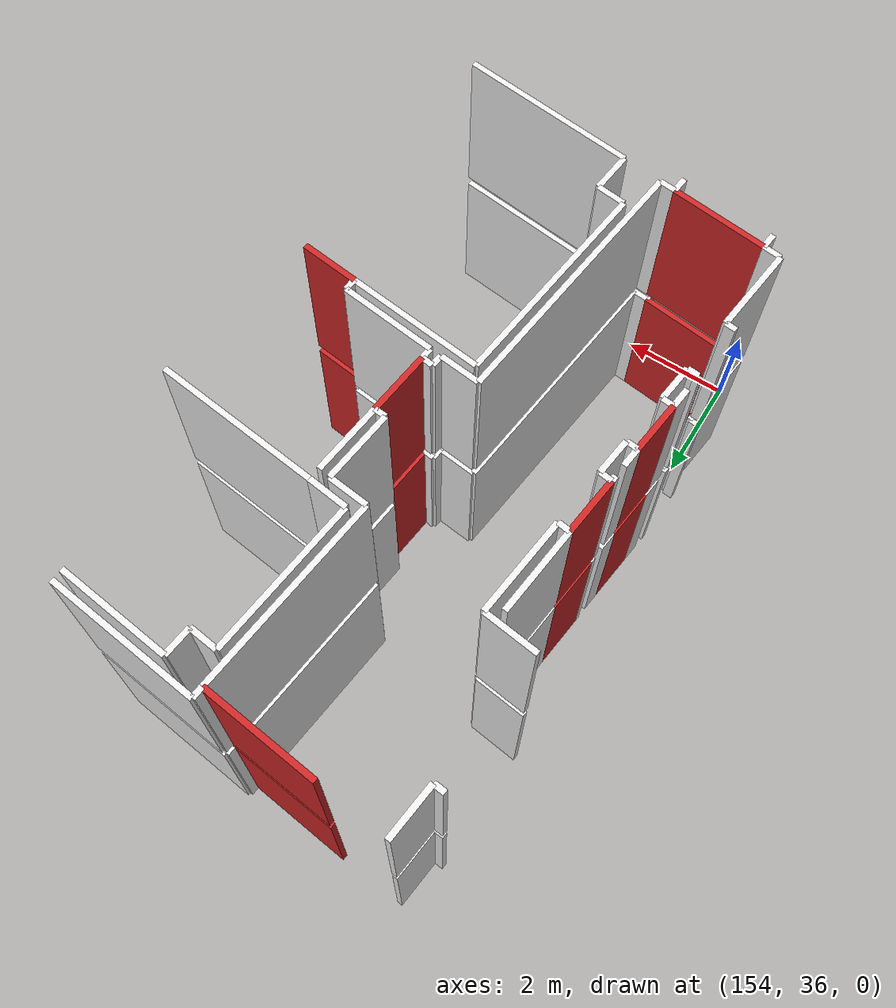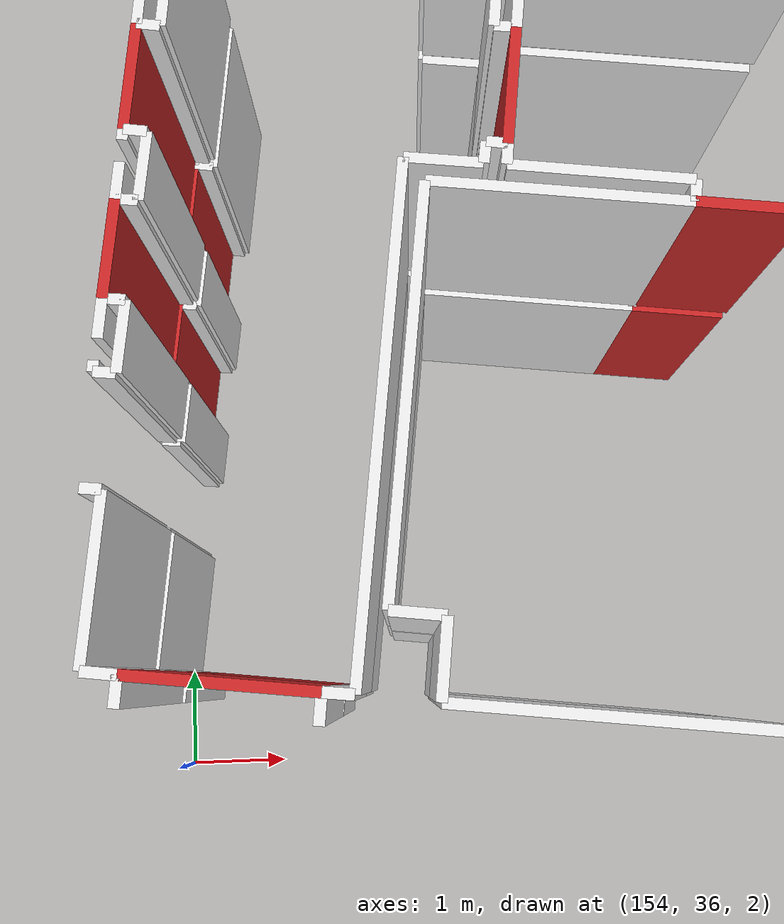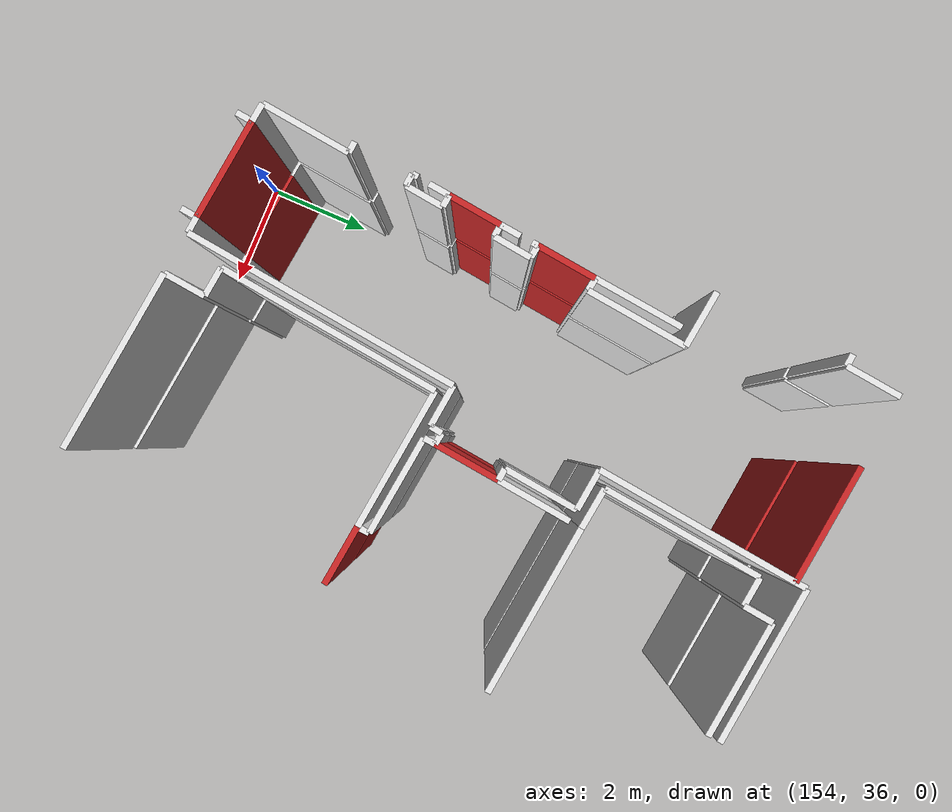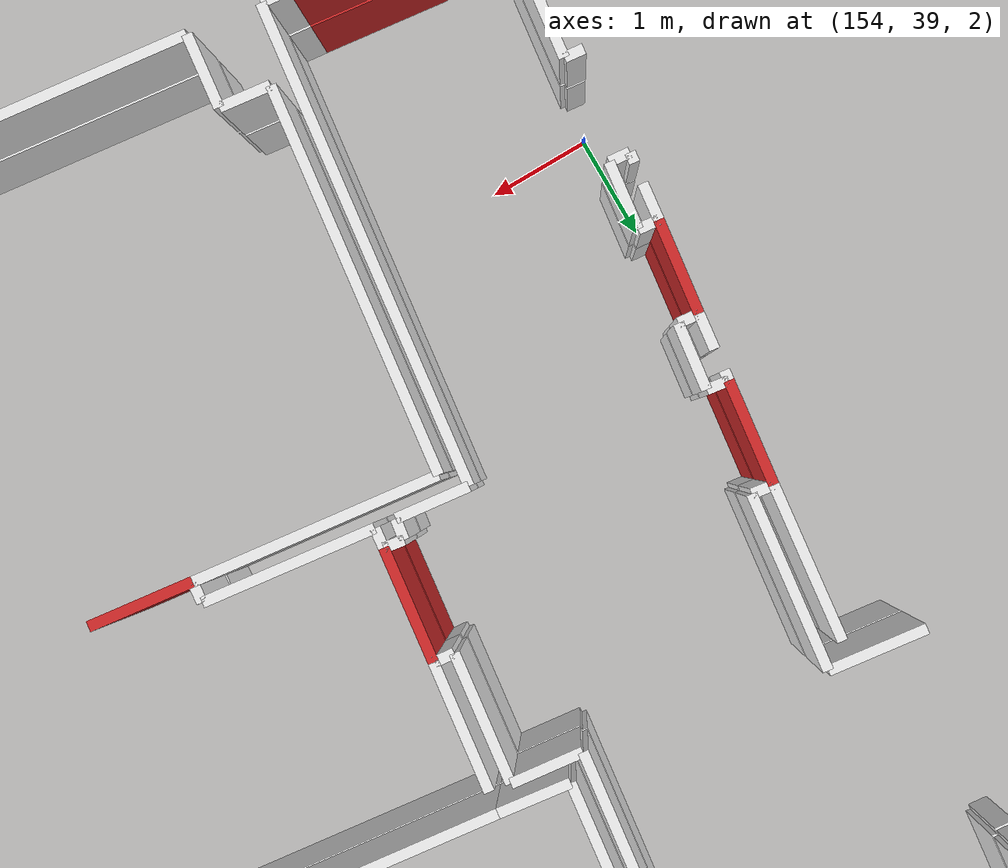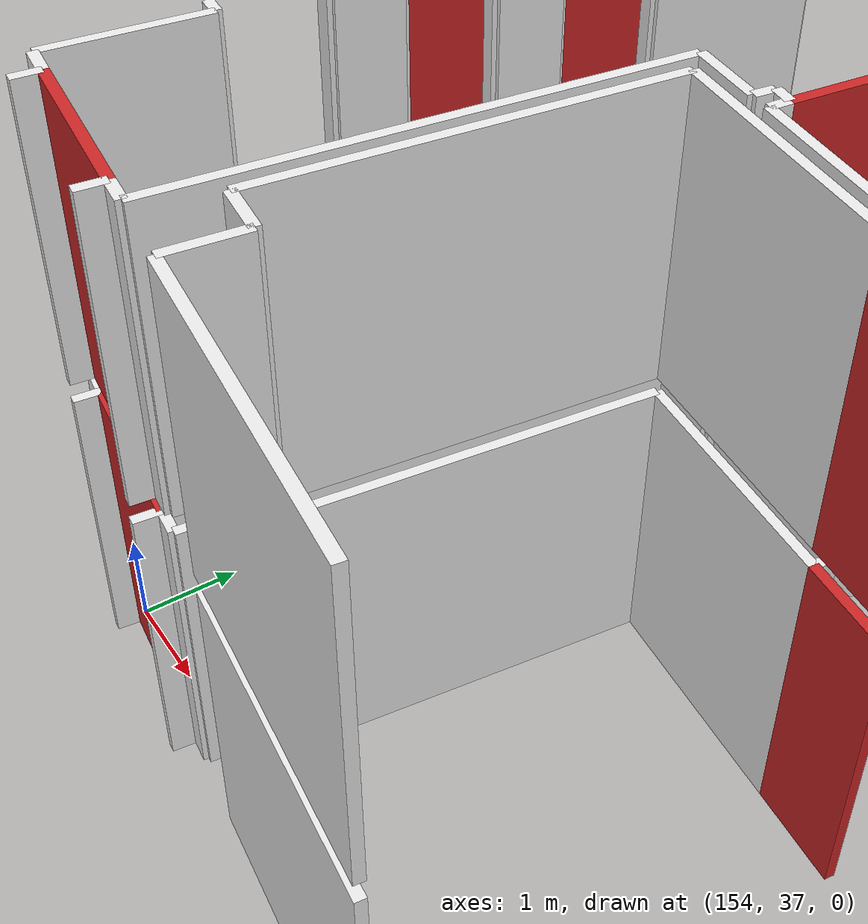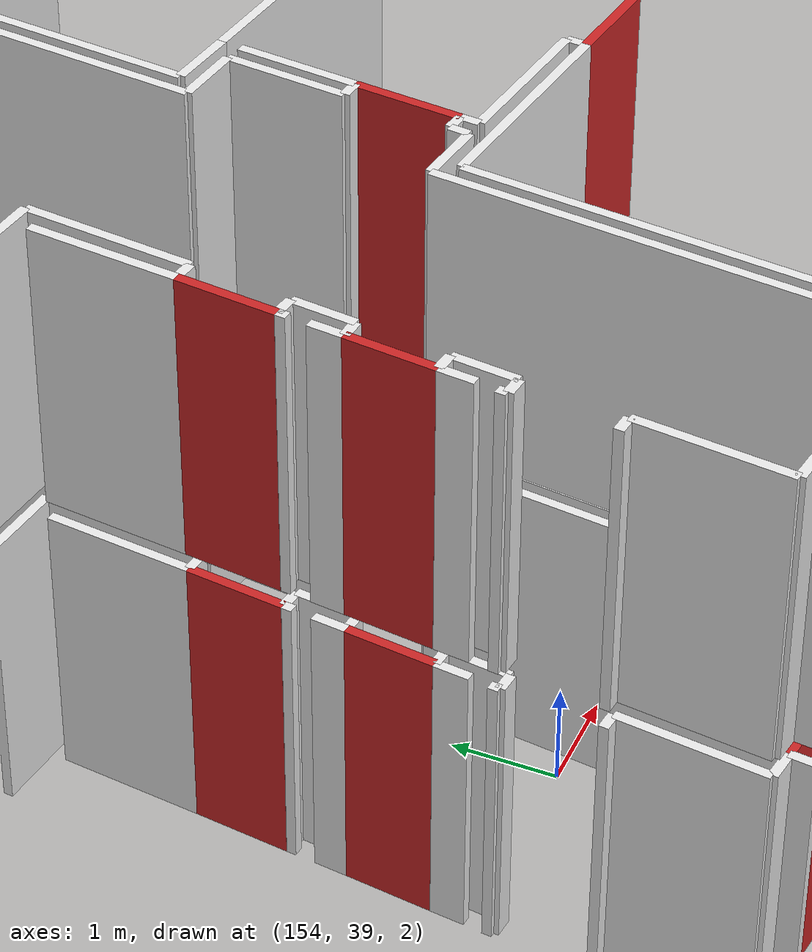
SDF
<sdf version="1.6">
 <world name="default">
  <model name="wall_154.0_40.6_0.0">
   <static>true</static>
   <pose>153.9649999999965 40.574999999953434 1.5 0 0 -1.693768196390317</pose>
   <link name="link">
    <visual name="visual">
     <geometry><box><size>0.8967719889926413 0.1 3</size></box></geometry>
     <material>
      <script><uri>file://media/materials/scripts/gazebo.material</uri><name>Gazebo/Red</name></script>
     </material>
    </visual>
   </link>
  </model>
  <model name="wall_156.3_47.3_0.0">
   <static>true</static>
   <pose>156.25500000000466 47.32000000006519 1.5 0 0 -0.12002333835124222</pose>
   <link name="link">
    <visual name="visual">
     <geometry><box><size>2.004420115606183 0.1 3</size></box></geometry>
     <material>
      <script><uri>file://media/materials/scripts/gazebo.material</uri><name>Gazebo/Red</name></script>
     </material>
    </visual>
   </link>
  </model>
  <model name="wall_154.2_42.2_0.0">
   <static>true</static>
   <pose>154.15000000002328 42.15500000002794 1.5 0 0 -1.6914199953995817</pose>
   <link name="link">
    <visual name="visual">
     <geometry><box><size>0.997246208074735 0.1 3</size></box></geometry>
     <material>
      <script><uri>file://media/materials/scripts/gazebo.material</uri><name>Gazebo/Red</name></script>
     </material>
    </visual>
   </link>
  </model>
  <model name="wall_157.5_41.9_0.0">
   <static>true</static>
   <pose>157.51500000001397 41.94500000006519 1.5 0 0 -1.6895016639081246</pose>
   <link name="link">
    <visual name="visual">
     <geometry><box><size>1.0977249203199801 0.1 3</size></box></geometry>
     <material>
      <script><uri>file://media/materials/scripts/gazebo.material</uri><name>Gazebo/Red</name></script>
     </material>
    </visual>
   </link>
  </model>
  <model name="wall_154.9_36.9_0.0">
   <static>true</static>
   <pose>154.86999999999534 36.85000000009313 1.5 0 0 -0.11990398547329398</pose>
   <link name="link">
    <visual name="visual">
     <geometry><box><size>1.6720047847367918 0.1 3</size></box></geometry>
     <material>
      <script><uri>file://media/materials/scripts/gazebo.material</uri><name>Gazebo/Red</name></script>
     </material>
    </visual>
   </link>
  </model>
  <model name="wall_159.5_40.8_0.0">
   <static>true</static>
   <pose>159.5449999999837 40.75 1.5 0 0 -0.1206236686924795</pose>
   <link name="link">
    <visual name="visual">
     <geometry><box><size>0.9972462083198822 0.1 3</size></box></geometry>
     <material>
      <script><uri>file://media/materials/scripts/gazebo.material</uri><name>Gazebo/Red</name></script>
     </material>
    </visual>
   </link>
  </model>
  <model name="wall_153.8_39.5_0.0">
   <static>true</static>
   <pose>153.83500000002095 39.54000000003725 1.5 0 0 1.4711276738426837</pose>
   <link name="link">
    <visual name="visual">
     <geometry><box><size>0.10049875584145537 0.1 3</size></box></geometry>
     <material>
      <script><uri>file://media/materials/scripts/gazebo.material</uri><name>Gazebo/White</name></script>
     </material>
    </visual>
   </link>
  </model>
  <model name="wall_154.0_41.2_0.0">
   <static>true</static>
   <pose>154.04000000000815 41.18999999994412 1.5 0 0 1.4536875822379653</pose>
   <link name="link">
    <visual name="visual">
     <geometry><box><size>0.34234485522203445 0.1 3</size></box></geometry>
     <material>
      <script><uri>file://media/materials/scripts/gazebo.material</uri><name>Gazebo/White</name></script>
     </material>
    </visual>
   </link>
  </model>
  <model name="wall_153.9_40.0_0.0">
   <static>true</static>
   <pose>153.88999999998487 39.954999999841675 1.5 0 0 1.4570043197403058</pose>
   <link name="link">
    <visual name="visual">
     <geometry><box><size>0.35227829916632136 0.1 3</size></box></geometry>
     <material>
      <script><uri>file://media/materials/scripts/gazebo.material</uri><name>Gazebo/White</name></script>
     </material>
    </visual>
   </link>
  </model>
  <model name="wall_158.6_47.2_0.0">
   <static>true</static>
   <pose>158.5899999999965 47.23999999999069 1.5 0 0 3.020968985070269</pose>
   <link name="link">
    <visual name="visual">
     <geometry><box><size>2.659323222111057 0.1 3</size></box></geometry>
     <material>
      <script><uri>file://media/materials/scripts/gazebo.material</uri><name>Gazebo/White</name></script>
     </material>
    </visual>
   </link>
  </model>
  <model name="wall_157.3_47.3_0.0">
   <static>true</static>
   <pose>157.2600000000093 47.300000000046566 1.5 0 0 -1.670464979516584</pose>
   <link name="link">
    <visual name="visual">
     <geometry><box><size>0.20099751214626105 0.1 3</size></box></geometry>
     <material>
      <script><uri>file://media/materials/scripts/gazebo.material</uri><name>Gazebo/White</name></script>
     </material>
    </visual>
   </link>
  </model>
  <model name="wall_159.2_43.8_0.0">
   <static>true</static>
   <pose>159.1700000000128 43.75 1.5 0 0 3.0216044435658165</pose>
   <link name="link">
    <visual name="visual">
     <geometry><box><size>2.840422503772646 0.1 3</size></box></geometry>
     <material>
      <script><uri>file://media/materials/scripts/gazebo.material</uri><name>Gazebo/White</name></script>
     </material>
    </visual>
   </link>
  </model>
  <model name="wall_157.4_44.0_0.0">
   <static>true</static>
   <pose>157.41500000000815 43.96499999985099 1.5 0 0 3.01189011664666</pose>
   <link name="link">
    <visual name="visual">
     <geometry><box><size>0.6958448102676278 0.1 3</size></box></geometry>
     <material>
      <script><uri>file://media/materials/scripts/gazebo.material</uri><name>Gazebo/White</name></script>
     </material>
    </visual>
   </link>
  </model>
  <model name="wall_157.2_45.3_0.0">
   <static>true</static>
   <pose>157.23000000001048 45.34499999997206 1.5 0 0 1.4515150894624935</pose>
   <link name="link">
    <visual name="visual">
     <geometry><box><size>2.6891076590745193 0.1 3</size></box></geometry>
     <material>
      <script><uri>file://media/materials/scripts/gazebo.material</uri><name>Gazebo/White</name></script>
     </material>
    </visual>
   </link>
  </model>
  <model name="wall_157.6_46.7_0.0">
   <static>true</static>
   <pose>157.6350000000093 46.6500000001397 1.5 0 0 -0.12184243713456504</pose>
   <link name="link">
    <visual name="visual">
     <geometry><box><size>0.4936598018854468 0.1 3</size></box></geometry>
     <material>
      <script><uri>file://media/materials/scripts/gazebo.material</uri><name>Gazebo/White</name></script>
     </material>
    </visual>
   </link>
  </model>
  <model name="wall_157.9_46.9_0.0">
   <static>true</static>
   <pose>157.9100000000035 46.87000000011176 1.5 0 0 1.4513674007811488</pose>
   <link name="link">
    <visual name="visual">
     <geometry><box><size>0.5035871324802894 0.1 3</size></box></geometry>
     <material>
      <script><uri>file://media/materials/scripts/gazebo.material</uri><name>Gazebo/White</name></script>
     </material>
    </visual>
   </link>
  </model>
  <model name="wall_158.9_47.0_0.0">
   <static>true</static>
   <pose>158.91500000000815 47.0 1.5 0 0 -0.12246105752953153</pose>
   <link name="link">
    <visual name="visual">
     <geometry><box><size>1.964713719642811 0.1 3</size></box></geometry>
     <material>
      <script><uri>file://media/materials/scripts/gazebo.material</uri><name>Gazebo/White</name></script>
     </material>
    </visual>
   </link>
  </model>
  <model name="wall_153.8_38.5_0.0">
   <static>true</static>
   <pose>153.81499999997322 38.48999999999069 1.5 0 0 3.0367157147638757</pose>
   <link name="link">
    <visual name="visual">
     <geometry><box><size>0.19104973174969345 0.1 3</size></box></geometry>
     <material>
      <script><uri>file://media/materials/scripts/gazebo.material</uri><name>Gazebo/White</name></script>
     </material>
    </visual>
   </link>
  </model>
  <model name="wall_153.9_39.5_0.0">
   <static>true</static>
   <pose>153.93000000002212 39.480000000214204 1.5 0 0 -0.09966865257760905</pose>
   <link name="link">
    <visual name="visual">
     <geometry><box><size>0.20099751243585498 0.1 3</size></box></geometry>
     <material>
      <script><uri>file://media/materials/scripts/gazebo.material</uri><name>Gazebo/White</name></script>
     </material>
    </visual>
   </link>
  </model>
  <model name="wall_154.1_39.8_0.0">
   <static>true</static>
   <pose>154.07000000000698 39.79000000003725 1.5 0 0 1.446441332248135</pose>
   <link name="link">
    <visual name="visual">
     <geometry><box><size>0.6449806195259987 0.1 3</size></box></geometry>
     <material>
      <script><uri>file://media/materials/scripts/gazebo.material</uri><name>Gazebo/White</name></script>
     </material>
    </visual>
   </link>
  </model>
  <model name="wall_154.0_40.1_0.0">
   <static>true</static>
   <pose>154.0099999999802 40.11999999987893 1.5 0 0 3.0419240010121844</pose>
   <link name="link">
    <visual name="visual">
     <geometry><box><size>0.20099751243585498 0.1 3</size></box></geometry>
     <material>
      <script><uri>file://media/materials/scripts/gazebo.material</uri><name>Gazebo/White</name></script>
     </material>
    </visual>
   </link>
  </model>
  <model name="wall_154.1_41.0_0.0">
   <static>true</static>
   <pose>154.11999999999534 41.01000000000931 1.5 0 0 -0.09966865260642473</pose>
   <link name="link">
    <visual name="visual">
     <geometry><box><size>0.20099751237793617 0.1 3</size></box></geometry>
     <material>
      <script><uri>file://media/materials/scripts/gazebo.material</uri><name>Gazebo/White</name></script>
     </material>
    </visual>
   </link>
  </model>
  <model name="wall_154.3_41.3_0.0">
   <static>true</static>
   <pose>154.2599999999802 41.31499999994412 1.5 0 0 1.444488209684028</pose>
   <link name="link">
    <visual name="visual">
     <geometry><box><size>0.6350590522634818 0.1 3</size></box></geometry>
     <material>
      <script><uri>file://media/materials/scripts/gazebo.material</uri><name>Gazebo/White</name></script>
     </material>
    </visual>
   </link>
  </model>
  <model name="wall_154.2_41.6_0.0">
   <static>true</static>
   <pose>154.19500000000698 41.64500000001863 1.5 0 0 2.999695597743866</pose>
   <link name="link">
    <visual name="visual">
     <geometry><box><size>0.21213203435596426 0.1 3</size></box></geometry>
     <material>
      <script><uri>file://media/materials/scripts/gazebo.material</uri><name>Gazebo/White</name></script>
     </material>
    </visual>
   </link>
  </model>
  <model name="wall_154.3_42.6_0.0">
   <static>true</static>
   <pose>154.31500000000233 42.63500000000931 1.5 0 0 -0.14189705367284136</pose>
   <link name="link">
    <visual name="visual">
     <geometry><box><size>0.2121320342901098 0.1 3</size></box></geometry>
     <material>
      <script><uri>file://media/materials/scripts/gazebo.material</uri><name>Gazebo/White</name></script>
     </material>
    </visual>
   </link>
  </model>
  <model name="wall_154.5_43.5_0.0">
   <static>true</static>
   <pose>154.51999999998952 43.45999999996275 1.5 0 0 1.4523063676091028</pose>
   <link name="link">
    <visual name="visual">
     <geometry><box><size>1.6918628783099707 0.1 3</size></box></geometry>
     <material>
      <script><uri>file://media/materials/scripts/gazebo.material</uri><name>Gazebo/White</name></script>
     </material>
    </visual>
   </link>
  </model>
  <model name="wall_154.1_44.4_0.0">
   <static>true</static>
   <pose>154.14999999999418 44.359999999869615 1.5 0 0 3.0146198638590396</pose>
   <link name="link">
    <visual name="visual">
     <geometry><box><size>0.9476286192550325 0.1 3</size></box></geometry>
     <material>
      <script><uri>file://media/materials/scripts/gazebo.material</uri><name>Gazebo/White</name></script>
     </material>
    </visual>
   </link>
  </model>
  <model name="wall_153.9_46.7_0.0">
   <static>true</static>
   <pose>153.85000000000582 46.65999999991618 1.5 0 0 -0.09966865257760905</pose>
   <link name="link">
    <visual name="visual">
     <geometry><box><size>0.20099751243585498 0.1 3</size></box></geometry>
     <material>
      <script><uri>file://media/materials/scripts/gazebo.material</uri><name>Gazebo/White</name></script>
     </material>
    </visual>
   </link>
  </model>
  <model name="wall_154.0_47.1_0.0">
   <static>true</static>
   <pose>154.00500000000466 47.11499999999069 1.5 0 0 1.4530637520266436</pose>
   <link name="link">
    <visual name="visual">
     <geometry><box><size>0.9364827816402892 0.1 3</size></box></geometry>
     <material>
      <script><uri>file://media/materials/scripts/gazebo.material</uri><name>Gazebo/White</name></script>
     </material>
    </visual>
   </link>
  </model>
  <model name="wall_157.0_45.5_0.0">
   <static>true</static>
   <pose>157.0450000000128 45.515000000130385 1.5 0 0 -1.6918630613513788</pose>
   <link name="link">
    <visual name="visual">
     <geometry><box><size>3.3948490394614383 0.1 3</size></box></geometry>
     <material>
      <script><uri>file://media/materials/scripts/gazebo.material</uri><name>Gazebo/White</name></script>
     </material>
    </visual>
   </link>
  </model>
  <model name="wall_157.2_43.8_0.0">
   <static>true</static>
   <pose>157.18500000002678 43.79000000003725 1.5 0 0 -0.11542666047308585</pose>
   <link name="link">
    <visual name="visual">
     <geometry><box><size>0.6946221994833839 0.1 3</size></box></geometry>
     <material>
      <script><uri>file://media/materials/scripts/gazebo.material</uri><name>Gazebo/White</name></script>
     </material>
    </visual>
   </link>
  </model>
  <model name="wall_157.5_43.1_0.0">
   <static>true</static>
   <pose>157.4550000000163 43.12999999988824 1.5 0 0 -1.6911791475924711</pose>
   <link name="link">
    <visual name="visual">
     <geometry><box><size>1.2490396313013081 0.1 3</size></box></geometry>
     <material>
      <script><uri>file://media/materials/scripts/gazebo.material</uri><name>Gazebo/White</name></script>
     </material>
    </visual>
   </link>
  </model>
  <model name="wall_157.5_42.5_0.0">
   <static>true</static>
   <pose>157.48000000001048 42.5 1.5 0 0 -0.09966865027235515</pose>
   <link name="link">
    <visual name="visual">
     <geometry><box><size>0.20099751238951993 0.1 3</size></box></geometry>
     <material>
      <script><uri>file://media/materials/scripts/gazebo.material</uri><name>Gazebo/White</name></script>
     </material>
    </visual>
   </link>
  </model>
  <model name="wall_157.4_41.4_0.0">
   <static>true</static>
   <pose>157.35500000001048 41.41500000003725 1.5 0 0 2.9849907752705747</pose>
   <link name="link">
    <visual name="visual">
     <geometry><box><size>0.19235384065968367 0.1 3</size></box></geometry>
     <material>
      <script><uri>file://media/materials/scripts/gazebo.material</uri><name>Gazebo/White</name></script>
     </material>
    </visual>
   </link>
  </model>
  <model name="wall_157.2_41.3_0.0">
   <static>true</static>
   <pose>157.24499999999534 41.330000000074506 1.5 0 0 -1.719686274404394</pose>
   <link name="link">
    <visual name="visual">
     <geometry><box><size>0.20223748434991518 0.1 3</size></box></geometry>
     <material>
      <script><uri>file://media/materials/scripts/gazebo.material</uri><name>Gazebo/White</name></script>
     </material>
    </visual>
   </link>
  </model>
  <model name="wall_156.9_41.3_0.0">
   <static>true</static>
   <pose>156.88000000000466 41.27000000001863 1.5 0 0 3.027800646333516</pose>
   <link name="link">
    <visual name="visual">
     <geometry><box><size>0.7045565981145364 0.1 3</size></box></geometry>
     <material>
      <script><uri>file://media/materials/scripts/gazebo.material</uri><name>Gazebo/White</name></script>
     </material>
    </visual>
   </link>
  </model>
  <model name="wall_156.2_39.0_0.0">
   <static>true</static>
   <pose>156.25 39.015000000130385 1.5 0 0 -1.6922006861437495</pose>
   <link name="link">
    <visual name="visual">
     <geometry><box><size>4.624035034328207 0.1 3</size></box></geometry>
     <material>
      <script><uri>file://media/materials/scripts/gazebo.material</uri><name>Gazebo/White</name></script>
     </material>
    </visual>
   </link>
  </model>
  <model name="wall_155.8_36.7_0.0">
   <static>true</static>
   <pose>155.83499999999185 36.735000000102445 1.5 0 0 3.0309354331494087</pose>
   <link name="link">
    <visual name="visual">
     <geometry><box><size>0.271661554082157 0.1 3</size></box></geometry>
     <material>
      <script><uri>file://media/materials/scripts/gazebo.material</uri><name>Gazebo/White</name></script>
     </material>
    </visual>
   </link>
  </model>
  <model name="wall_153.9_37.0_0.0">
   <static>true</static>
   <pose>153.8849999999802 36.97000000020489 1.5 0 0 3.0132694257848427</pose>
   <link name="link">
    <visual name="visual">
     <geometry><box><size>0.31256999216421383 0.1 3</size></box></geometry>
     <material>
      <script><uri>file://media/materials/scripts/gazebo.material</uri><name>Gazebo/White</name></script>
     </material>
    </visual>
   </link>
  </model>
  <model name="wall_153.8_37.7_0.0">
   <static>true</static>
   <pose>153.81999999997788 37.735000000102445 1.5 0 0 1.4505735401188582</pose>
   <link name="link">
    <visual name="visual">
     <geometry><box><size>1.5008331017391296 0.1 3</size></box></geometry>
     <material>
      <script><uri>file://media/materials/scripts/gazebo.material</uri><name>Gazebo/White</name></script>
     </material>
    </visual>
   </link>
  </model>
  <model name="wall_156.7_37.0_0.0">
   <static>true</static>
   <pose>156.70999999999185 36.97999999998137 1.5 0 0 1.457004319658224</pose>
   <link name="link">
    <visual name="visual">
     <geometry><box><size>0.704556598339252 0.1 3</size></box></geometry>
     <material>
      <script><uri>file://media/materials/scripts/gazebo.material</uri><name>Gazebo/White</name></script>
     </material>
    </visual>
   </link>
  </model>
  <model name="wall_156.5_37.4_0.0">
   <static>true</static>
   <pose>156.50500000000466 37.360000000102445 1.5 0 0 3.019750216455228</pose>
   <link name="link">
    <visual name="visual">
     <geometry><box><size>0.4936598018854468 0.1 3</size></box></geometry>
     <material>
      <script><uri>file://media/materials/scripts/gazebo.material</uri><name>Gazebo/White</name></script>
     </material>
    </visual>
   </link>
  </model>
  <model name="wall_156.5_39.2_0.0">
   <static>true</static>
   <pose>156.48500000001513 39.23999999999069 1.5 0 0 1.449769106973541</pose>
   <link name="link">
    <visual name="visual">
     <geometry><box><size>3.7272644121316296 0.1 3</size></box></geometry>
     <material>
      <script><uri>file://media/materials/scripts/gazebo.material</uri><name>Gazebo/White</name></script>
     </material>
    </visual>
   </link>
  </model>
  <model name="wall_157.9_40.9_0.0">
   <static>true</static>
   <pose>157.88000000000466 40.949999999953434 1.5 0 0 -0.11909188516448511</pose>
   <link name="link">
    <visual name="visual">
     <geometry><box><size>2.3566925976318402 0.1 3</size></box></geometry>
     <material>
      <script><uri>file://media/materials/scripts/gazebo.material</uri><name>Gazebo/White</name></script>
     </material>
    </visual>
   </link>
  </model>
  <model name="wall_158.2_36.4_0.0">
   <static>true</static>
   <pose>158.18499999999767 36.449999999953434 1.5 0 0 3.0233351444942267</pose>
   <link name="link">
    <visual name="visual">
     <geometry><box><size>3.0513111935814474 0.1 3</size></box></geometry>
     <material>
      <script><uri>file://media/materials/scripts/gazebo.material</uri><name>Gazebo/White</name></script>
     </material>
    </visual>
   </link>
  </model>
  <model name="wall_154.3_43.4_0.0">
   <static>true</static>
   <pose>154.2950000000128 43.39500000001863 1.5 0 0 -1.6843990475228636</pose>
   <link name="link">
    <visual name="visual">
     <geometry><box><size>1.4996666298416261 0.1 3</size></box></geometry>
     <material>
      <script><uri>file://media/materials/scripts/gazebo.material</uri><name>Gazebo/White</name></script>
     </material>
    </visual>
   </link>
  </model>
  <model name="wall_154.1_41.6_0.0">
   <static>true</static>
   <pose>154.08500000002095 41.610000000102445 1.5 0 0 -1.6704649792860586</pose>
   <link name="link">
    <visual name="visual">
     <geometry><box><size>0.10049875630480566 0.1 3</size></box></geometry>
     <material>
      <script><uri>file://media/materials/scripts/gazebo.material</uri><name>Gazebo/White</name></script>
     </material>
    </visual>
   </link>
  </model>
  <model name="wall_159.1_40.9_0.0">
   <static>true</static>
   <pose>159.05999999999767 40.90999999991618 1.5 0 0 1.471127674073209</pose>
   <link name="link">
    <visual name="visual">
     <geometry><box><size>0.20099751214626105 0.1 3</size></box></geometry>
     <material>
      <script><uri>file://media/materials/scripts/gazebo.material</uri><name>Gazebo/White</name></script>
     </material>
    </visual>
   </link>
  </model>
  <model name="wall_158.2_41.1_0.0">
   <static>true</static>
   <pose>158.25 41.109999999869615 1.5 0 0 3.0202406529081416</pose>
   <link name="link">
    <visual name="visual">
     <geometry><box><size>1.6521501142814858 0.1 3</size></box></geometry>
     <material>
      <script><uri>file://media/materials/scripts/gazebo.material</uri><name>Gazebo/White</name></script>
     </material>
    </visual>
   </link>
  </model>
  <model name="wall_157.4_41.3_0.0">
   <static>true</static>
   <pose>157.44000000000233 41.30499999993481 1.5 0 0 1.4659193879370842</pose>
   <link name="link">
    <visual name="visual">
     <geometry><box><size>0.19104973169180559 0.1 3</size></box></geometry>
     <material>
      <script><uri>file://media/materials/scripts/gazebo.material</uri><name>Gazebo/White</name></script>
     </material>
    </visual>
   </link>
  </model>
  <model name="wall_157.7_43.1_0.0">
   <static>true</static>
   <pose>157.65499999999884 43.105000000214204 1.5 0 0 1.4494443262502912</pose>
   <link name="link">
    <visual name="visual">
     <geometry><box><size>1.2391125856610858 0.1 3</size></box></geometry>
     <material>
      <script><uri>file://media/materials/scripts/gazebo.material</uri><name>Gazebo/White</name></script>
     </material>
    </visual>
   </link>
  </model>
  <model name="wall_154.0_36.8_0.0">
   <static>true</static>
   <pose>154.02499999999418 36.81500000017695 1.5 0 0 1.4601391057393092</pose>
   <link name="link">
    <visual name="visual">
     <geometry><box><size>0.2716615541592925 0.1 3</size></box></geometry>
     <material>
      <script><uri>file://media/materials/scripts/gazebo.material</uri><name>Gazebo/White</name></script>
     </material>
    </visual>
   </link>
  </model>
  <model name="wall_155.7_36.6_0.0">
   <static>true</static>
   <pose>155.68499999999767 36.61499999999069 1.5 0 0 -1.681453548063439</pose>
   <link name="link">
    <visual name="visual">
     <geometry><box><size>0.27166155416572046 0.1 3</size></box></geometry>
     <material>
      <script><uri>file://media/materials/scripts/gazebo.material</uri><name>Gazebo/White</name></script>
     </material>
    </visual>
   </link>
  </model>
  <model name="wall_154.0_40.6_3.2">
   <static>true</static>
   <pose>153.9649999999965 40.574999999953434 4.7 0 0 -1.693768196390317</pose>
   <link name="link">
    <visual name="visual">
     <geometry><box><size>0.8967719889926413 0.1 3</size></box></geometry>
     <material>
      <script><uri>file://media/materials/scripts/gazebo.material</uri><name>Gazebo/Red</name></script>
     </material>
    </visual>
   </link>
  </model>
  <model name="wall_156.3_47.3_3.2">
   <static>true</static>
   <pose>156.25500000000466 47.32000000006519 4.7 0 0 -0.12002333835124222</pose>
   <link name="link">
    <visual name="visual">
     <geometry><box><size>2.004420115606183 0.1 3</size></box></geometry>
     <material>
      <script><uri>file://media/materials/scripts/gazebo.material</uri><name>Gazebo/Red</name></script>
     </material>
    </visual>
   </link>
  </model>
  <model name="wall_154.2_42.2_3.2">
   <static>true</static>
   <pose>154.15000000002328 42.15500000002794 4.7 0 0 -1.6914199953995817</pose>
   <link name="link">
    <visual name="visual">
     <geometry><box><size>0.997246208074735 0.1 3</size></box></geometry>
     <material>
      <script><uri>file://media/materials/scripts/gazebo.material</uri><name>Gazebo/Red</name></script>
     </material>
    </visual>
   </link>
  </model>
  <model name="wall_157.5_41.9_3.2">
   <static>true</static>
   <pose>157.51500000001397 41.94500000006519 4.7 0 0 -1.6895016639081246</pose>
   <link name="link">
    <visual name="visual">
     <geometry><box><size>1.0977249203199801 0.1 3</size></box></geometry>
     <material>
      <script><uri>file://media/materials/scripts/gazebo.material</uri><name>Gazebo/Red</name></script>
     </material>
    </visual>
   </link>
  </model>
  <model name="wall_154.9_36.9_3.2">
   <static>true</static>
   <pose>154.86999999999534 36.85000000009313 4.7 0 0 -0.11990398547329398</pose>
   <link name="link">
    <visual name="visual">
     <geometry><box><size>1.6720047847367918 0.1 3</size></box></geometry>
     <material>
      <script><uri>file://media/materials/scripts/gazebo.material</uri><name>Gazebo/Red</name></script>
     </material>
    </visual>
   </link>
  </model>
  <model name="wall_159.5_40.8_3.2">
   <static>true</static>
   <pose>159.5449999999837 40.75 4.7 0 0 -0.1206236686924795</pose>
   <link name="link">
    <visual name="visual">
     <geometry><box><size>0.9972462083198822 0.1 3</size></box></geometry>
     <material>
      <script><uri>file://media/materials/scripts/gazebo.material</uri><name>Gazebo/Red</name></script>
     </material>
    </visual>
   </link>
  </model>
  <model name="wall_153.8_39.5_3.2">
   <static>true</static>
   <pose>153.83500000002095 39.54000000003725 4.7 0 0 1.4711276738426837</pose>
   <link name="link">
    <visual name="visual">
     <geometry><box><size>0.10049875584145537 0.1 3</size></box></geometry>
     <material>
      <script><uri>file://media/materials/scripts/gazebo.material</uri><name>Gazebo/White</name></script>
     </material>
    </visual>
   </link>
  </model>
  <model name="wall_154.0_41.2_3.2">
   <static>true</static>
   <pose>154.04000000000815 41.18999999994412 4.7 0 0 1.4536875822379653</pose>
   <link name="link">
    <visual name="visual">
     <geometry><box><size>0.34234485522203445 0.1 3</size></box></geometry>
     <material>
      <script><uri>file://media/materials/scripts/gazebo.material</uri><name>Gazebo/White</name></script>
     </material>
    </visual>
   </link>
  </model>
  <model name="wall_153.9_40.0_3.2">
   <static>true</static>
   <pose>153.88999999998487 39.954999999841675 4.7 0 0 1.4570043197403058</pose>
   <link name="link">
    <visual name="visual">
     <geometry><box><size>0.35227829916632136 0.1 3</size></box></geometry>
     <material>
      <script><uri>file://media/materials/scripts/gazebo.material</uri><name>Gazebo/White</name></script>
     </material>
    </visual>
   </link>
  </model>
  <model name="wall_158.6_47.2_3.2">
   <static>true</static>
   <pose>158.5899999999965 47.23999999999069 4.7 0 0 3.020968985070269</pose>
   <link name="link">
    <visual name="visual">
     <geometry><box><size>2.659323222111057 0.1 3</size></box></geometry>
     <material>
      <script><uri>file://media/materials/scripts/gazebo.material</uri><name>Gazebo/White</name></script>
     </material>
    </visual>
   </link>
  </model>
  <model name="wall_157.3_47.3_3.2">
   <static>true</static>
   <pose>157.2600000000093 47.300000000046566 4.7 0 0 -1.670464979516584</pose>
   <link name="link">
    <visual name="visual">
     <geometry><box><size>0.20099751214626105 0.1 3</size></box></geometry>
     <material>
      <script><uri>file://media/materials/scripts/gazebo.material</uri><name>Gazebo/White</name></script>
     </material>
    </visual>
   </link>
  </model>
  <model name="wall_159.2_43.8_3.2">
   <static>true</static>
   <pose>159.1700000000128 43.75 4.7 0 0 3.0216044435658165</pose>
   <link name="link">
    <visual name="visual">
     <geometry><box><size>2.840422503772646 0.1 3</size></box></geometry>
     <material>
      <script><uri>file://media/materials/scripts/gazebo.material</uri><name>Gazebo/White</name></script>
     </material>
    </visual>
   </link>
  </model>
  <model name="wall_157.4_44.0_3.2">
   <static>true</static>
   <pose>157.41500000000815 43.96499999985099 4.7 0 0 3.01189011664666</pose>
   <link name="link">
    <visual name="visual">
     <geometry><box><size>0.6958448102676278 0.1 3</size></box></geometry>
     <material>
      <script><uri>file://media/materials/scripts/gazebo.material</uri><name>Gazebo/White</name></script>
     </material>
    </visual>
   </link>
  </model>
  <model name="wall_157.2_45.3_3.2">
   <static>true</static>
   <pose>157.23000000001048 45.34499999997206 4.7 0 0 1.4515150894624935</pose>
   <link name="link">
    <visual name="visual">
     <geometry><box><size>2.6891076590745193 0.1 3</size></box></geometry>
     <material>
      <script><uri>file://media/materials/scripts/gazebo.material</uri><name>Gazebo/White</name></script>
     </material>
    </visual>
   </link>
  </model>
  <model name="wall_157.6_46.7_3.2">
   <static>true</static>
   <pose>157.6350000000093 46.6500000001397 4.7 0 0 -0.12184243713456504</pose>
   <link name="link">
    <visual name="visual">
     <geometry><box><size>0.4936598018854468 0.1 3</size></box></geometry>
     <material>
      <script><uri>file://media/materials/scripts/gazebo.material</uri><name>Gazebo/White</name></script>
     </material>
    </visual>
   </link>
  </model>
  <model name="wall_157.9_46.9_3.2">
   <static>true</static>
   <pose>157.9100000000035 46.87000000011176 4.7 0 0 1.4513674007811488</pose>
   <link name="link">
    <visual name="visual">
     <geometry><box><size>0.5035871324802894 0.1 3</size></box></geometry>
     <material>
      <script><uri>file://media/materials/scripts/gazebo.material</uri><name>Gazebo/White</name></script>
     </material>
    </visual>
   </link>
  </model>
  <model name="wall_158.9_47.0_3.2">
   <static>true</static>
   <pose>158.91500000000815 47.0 4.7 0 0 -0.12246105752953153</pose>
   <link name="link">
    <visual name="visual">
     <geometry><box><size>1.964713719642811 0.1 3</size></box></geometry>
     <material>
      <script><uri>file://media/materials/scripts/gazebo.material</uri><name>Gazebo/White</name></script>
     </material>
    </visual>
   </link>
  </model>
  <model name="wall_153.8_38.5_3.2">
   <static>true</static>
   <pose>153.81499999997322 38.48999999999069 4.7 0 0 3.0367157147638757</pose>
   <link name="link">
    <visual name="visual">
     <geometry><box><size>0.19104973174969345 0.1 3</size></box></geometry>
     <material>
      <script><uri>file://media/materials/scripts/gazebo.material</uri><name>Gazebo/White</name></script>
     </material>
    </visual>
   </link>
  </model>
  <model name="wall_153.9_39.5_3.2">
   <static>true</static>
   <pose>153.93000000002212 39.480000000214204 4.7 0 0 -0.09966865257760905</pose>
   <link name="link">
    <visual name="visual">
     <geometry><box><size>0.20099751243585498 0.1 3</size></box></geometry>
     <material>
      <script><uri>file://media/materials/scripts/gazebo.material</uri><name>Gazebo/White</name></script>
     </material>
    </visual>
   </link>
  </model>
  <model name="wall_154.1_39.8_3.2">
   <static>true</static>
   <pose>154.07000000000698 39.79000000003725 4.7 0 0 1.446441332248135</pose>
   <link name="link">
    <visual name="visual">
     <geometry><box><size>0.6449806195259987 0.1 3</size></box></geometry>
     <material>
      <script><uri>file://media/materials/scripts/gazebo.material</uri><name>Gazebo/White</name></script>
     </material>
    </visual>
   </link>
  </model>
  <model name="wall_154.0_40.1_3.2">
   <static>true</static>
   <pose>154.0099999999802 40.11999999987893 4.7 0 0 3.0419240010121844</pose>
   <link name="link">
    <visual name="visual">
     <geometry><box><size>0.20099751243585498 0.1 3</size></box></geometry>
     <material>
      <script><uri>file://media/materials/scripts/gazebo.material</uri><name>Gazebo/White</name></script>
     </material>
    </visual>
   </link>
  </model>
  <model name="wall_154.1_41.0_3.2">
   <static>true</static>
   <pose>154.11999999999534 41.01000000000931 4.7 0 0 -0.09966865260642473</pose>
   <link name="link">
    <visual name="visual">
     <geometry><box><size>0.20099751237793617 0.1 3</size></box></geometry>
     <material>
      <script><uri>file://media/materials/scripts/gazebo.material</uri><name>Gazebo/White</name></script>
     </material>
    </visual>
   </link>
  </model>
  <model name="wall_154.3_41.3_3.2">
   <static>true</static>
   <pose>154.2599999999802 41.31499999994412 4.7 0 0 1.444488209684028</pose>
   <link name="link">
    <visual name="visual">
     <geometry><box><size>0.6350590522634818 0.1 3</size></box></geometry>
     <material>
      <script><uri>file://media/materials/scripts/gazebo.material</uri><name>Gazebo/White</name></script>
     </material>
    </visual>
   </link>
  </model>
  <model name="wall_154.2_41.6_3.2">
   <static>true</static>
   <pose>154.19500000000698 41.64500000001863 4.7 0 0 2.999695597743866</pose>
   <link name="link">
    <visual name="visual">
     <geometry><box><size>0.21213203435596426 0.1 3</size></box></geometry>
     <material>
      <script><uri>file://media/materials/scripts/gazebo.material</uri><name>Gazebo/White</name></script>
     </material>
    </visual>
   </link>
  </model>
  <model name="wall_154.3_42.6_3.2">
   <static>true</static>
   <pose>154.31500000000233 42.63500000000931 4.7 0 0 -0.14189705367284136</pose>
   <link name="link">
    <visual name="visual">
     <geometry><box><size>0.2121320342901098 0.1 3</size></box></geometry>
     <material>
      <script><uri>file://media/materials/scripts/gazebo.material</uri><name>Gazebo/White</name></script>
     </material>
    </visual>
   </link>
  </model>
  <model name="wall_154.5_43.5_3.2">
   <static>true</static>
   <pose>154.51999999998952 43.45999999996275 4.7 0 0 1.4523063676091028</pose>
   <link name="link">
    <visual name="visual">
     <geometry><box><size>1.6918628783099707 0.1 3</size></box></geometry>
     <material>
      <script><uri>file://media/materials/scripts/gazebo.material</uri><name>Gazebo/White</name></script>
     </material>
    </visual>
   </link>
  </model>
  <model name="wall_154.1_44.4_3.2">
   <static>true</static>
   <pose>154.14999999999418 44.359999999869615 4.7 0 0 3.0146198638590396</pose>
   <link name="link">
    <visual name="visual">
     <geometry><box><size>0.9476286192550325 0.1 3</size></box></geometry>
     <material>
      <script><uri>file://media/materials/scripts/gazebo.material</uri><name>Gazebo/White</name></script>
     </material>
    </visual>
   </link>
  </model>
  <model name="wall_153.9_46.7_3.2">
   <static>true</static>
   <pose>153.85000000000582 46.65999999991618 4.7 0 0 -0.09966865257760905</pose>
   <link name="link">
    <visual name="visual">
     <geometry><box><size>0.20099751243585498 0.1 3</size></box></geometry>
     <material>
      <script><uri>file://media/materials/scripts/gazebo.material</uri><name>Gazebo/White</name></script>
     </material>
    </visual>
   </link>
  </model>
  <model name="wall_154.0_47.1_3.2">
   <static>true</static>
   <pose>154.00500000000466 47.11499999999069 4.7 0 0 1.4530637520266436</pose>
   <link name="link">
    <visual name="visual">
     <geometry><box><size>0.9364827816402892 0.1 3</size></box></geometry>
     <material>
      <script><uri>file://media/materials/scripts/gazebo.material</uri><name>Gazebo/White</name></script>
     </material>
    </visual>
   </link>
  </model>
  <model name="wall_157.0_45.5_3.2">
   <static>true</static>
   <pose>157.0450000000128 45.515000000130385 4.7 0 0 -1.6918630613513788</pose>
   <link name="link">
    <visual name="visual">
     <geometry><box><size>3.3948490394614383 0.1 3</size></box></geometry>
     <material>
      <script><uri>file://media/materials/scripts/gazebo.material</uri><name>Gazebo/White</name></script>
     </material>
    </visual>
   </link>
  </model>
  <model name="wall_157.2_43.8_3.2">
   <static>true</static>
   <pose>157.18500000002678 43.79000000003725 4.7 0 0 -0.11542666047308585</pose>
   <link name="link">
    <visual name="visual">
     <geometry><box><size>0.6946221994833839 0.1 3</size></box></geometry>
     <material>
      <script><uri>file://media/materials/scripts/gazebo.material</uri><name>Gazebo/White</name></script>
     </material>
    </visual>
   </link>
  </model>
  <model name="wall_157.5_43.1_3.2">
   <static>true</static>
   <pose>157.4550000000163 43.12999999988824 4.7 0 0 -1.6911791475924711</pose>
   <link name="link">
    <visual name="visual">
     <geometry><box><size>1.2490396313013081 0.1 3</size></box></geometry>
     <material>
      <script><uri>file://media/materials/scripts/gazebo.material</uri><name>Gazebo/White</name></script>
     </material>
    </visual>
   </link>
  </model>
  <model name="wall_157.5_42.5_3.2">
   <static>true</static>
   <pose>157.48000000001048 42.5 4.7 0 0 -0.09966865027235515</pose>
   <link name="link">
    <visual name="visual">
     <geometry><box><size>0.20099751238951993 0.1 3</size></box></geometry>
     <material>
      <script><uri>file://media/materials/scripts/gazebo.material</uri><name>Gazebo/White</name></script>
     </material>
    </visual>
   </link>
  </model>
  <model name="wall_157.4_41.4_3.2">
   <static>true</static>
   <pose>157.35500000001048 41.41500000003725 4.7 0 0 2.9849907752705747</pose>
   <link name="link">
    <visual name="visual">
     <geometry><box><size>0.19235384065968367 0.1 3</size></box></geometry>
     <material>
      <script><uri>file://media/materials/scripts/gazebo.material</uri><name>Gazebo/White</name></script>
     </material>
    </visual>
   </link>
  </model>
  <model name="wall_157.2_41.3_3.2">
   <static>true</static>
   <pose>157.24499999999534 41.330000000074506 4.7 0 0 -1.719686274404394</pose>
   <link name="link">
    <visual name="visual">
     <geometry><box><size>0.20223748434991518 0.1 3</size></box></geometry>
     <material>
      <script><uri>file://media/materials/scripts/gazebo.material</uri><name>Gazebo/White</name></script>
     </material>
    </visual>
   </link>
  </model>
  <model name="wall_156.9_41.3_3.2">
   <static>true</static>
   <pose>156.88000000000466 41.27000000001863 4.7 0 0 3.027800646333516</pose>
   <link name="link">
    <visual name="visual">
     <geometry><box><size>0.7045565981145364 0.1 3</size></box></geometry>
     <material>
      <script><uri>file://media/materials/scripts/gazebo.material</uri><name>Gazebo/White</name></script>
     </material>
    </visual>
   </link>
  </model>
  <model name="wall_156.2_39.0_3.2">
   <static>true</static>
   <pose>156.25 39.015000000130385 4.7 0 0 -1.6922006861437495</pose>
   <link name="link">
    <visual name="visual">
     <geometry><box><size>4.624035034328207 0.1 3</size></box></geometry>
     <material>
      <script><uri>file://media/materials/scripts/gazebo.material</uri><name>Gazebo/White</name></script>
     </material>
    </visual>
   </link>
  </model>
  <model name="wall_155.8_36.7_3.2">
   <static>true</static>
   <pose>155.83499999999185 36.735000000102445 4.7 0 0 3.0309354331494087</pose>
   <link name="link">
    <visual name="visual">
     <geometry><box><size>0.271661554082157 0.1 3</size></box></geometry>
     <material>
      <script><uri>file://media/materials/scripts/gazebo.material</uri><name>Gazebo/White</name></script>
     </material>
    </visual>
   </link>
  </model>
  <model name="wall_153.9_37.0_3.2">
   <static>true</static>
   <pose>153.8849999999802 36.97000000020489 4.7 0 0 3.0132694257848427</pose>
   <link name="link">
    <visual name="visual">
     <geometry><box><size>0.31256999216421383 0.1 3</size></box></geometry>
     <material>
      <script><uri>file://media/materials/scripts/gazebo.material</uri><name>Gazebo/White</name></script>
     </material>
    </visual>
   </link>
  </model>
  <model name="wall_153.8_37.7_3.2">
   <static>true</static>
   <pose>153.81999999997788 37.735000000102445 4.7 0 0 1.4505735401188582</pose>
   <link name="link">
    <visual name="visual">
     <geometry><box><size>1.5008331017391296 0.1 3</size></box></geometry>
     <material>
      <script><uri>file://media/materials/scripts/gazebo.material</uri><name>Gazebo/White</name></script>
     </material>
    </visual>
   </link>
  </model>
  <model name="wall_156.7_37.0_3.2">
   <static>true</static>
   <pose>156.70999999999185 36.97999999998137 4.7 0 0 1.457004319658224</pose>
   <link name="link">
    <visual name="visual">
     <geometry><box><size>0.704556598339252 0.1 3</size></box></geometry>
     <material>
      <script><uri>file://media/materials/scripts/gazebo.material</uri><name>Gazebo/White</name></script>
     </material>
    </visual>
   </link>
  </model>
  <model name="wall_156.5_37.4_3.2">
   <static>true</static>
   <pose>156.50500000000466 37.360000000102445 4.7 0 0 3.019750216455228</pose>
   <link name="link">
    <visual name="visual">
     <geometry><box><size>0.4936598018854468 0.1 3</size></box></geometry>
     <material>
      <script><uri>file://media/materials/scripts/gazebo.material</uri><name>Gazebo/White</name></script>
     </material>
    </visual>
   </link>
  </model>
  <model name="wall_156.5_39.2_3.2">
   <static>true</static>
   <pose>156.48500000001513 39.23999999999069 4.7 0 0 1.449769106973541</pose>
   <link name="link">
    <visual name="visual">
     <geometry><box><size>3.7272644121316296 0.1 3</size></box></geometry>
     <material>
      <script><uri>file://media/materials/scripts/gazebo.material</uri><name>Gazebo/White</name></script>
     </material>
    </visual>
   </link>
  </model>
  <model name="wall_157.9_40.9_3.2">
   <static>true</static>
   <pose>157.88000000000466 40.949999999953434 4.7 0 0 -0.11909188516448511</pose>
   <link name="link">
    <visual name="visual">
     <geometry><box><size>2.3566925976318402 0.1 3</size></box></geometry>
     <material>
      <script><uri>file://media/materials/scripts/gazebo.material</uri><name>Gazebo/White</name></script>
     </material>
    </visual>
   </link>
  </model>
  <model name="wall_158.2_36.4_3.2">
   <static>true</static>
   <pose>158.18499999999767 36.449999999953434 4.7 0 0 3.0233351444942267</pose>
   <link name="link">
    <visual name="visual">
     <geometry><box><size>3.0513111935814474 0.1 3</size></box></geometry>
     <material>
      <script><uri>file://media/materials/scripts/gazebo.material</uri><name>Gazebo/White</name></script>
     </material>
    </visual>
   </link>
  </model>
  <model name="wall_154.3_43.4_3.2">
   <static>true</static>
   <pose>154.2950000000128 43.39500000001863 4.7 0 0 -1.6843990475228636</pose>
   <link name="link">
    <visual name="visual">
     <geometry><box><size>1.4996666298416261 0.1 3</size></box></geometry>
     <material>
      <script><uri>file://media/materials/scripts/gazebo.material</uri><name>Gazebo/White</name></script>
     </material>
    </visual>
   </link>
  </model>
  <model name="wall_154.1_41.6_3.2">
   <static>true</static>
   <pose>154.08500000002095 41.610000000102445 4.7 0 0 -1.6704649792860586</pose>
   <link name="link">
    <visual name="visual">
     <geometry><box><size>0.10049875630480566 0.1 3</size></box></geometry>
     <material>
      <script><uri>file://media/materials/scripts/gazebo.material</uri><name>Gazebo/White</name></script>
     </material>
    </visual>
   </link>
  </model>
  <model name="wall_159.1_40.9_3.2">
   <static>true</static>
   <pose>159.05999999999767 40.90999999991618 4.7 0 0 1.471127674073209</pose>
   <link name="link">
    <visual name="visual">
     <geometry><box><size>0.20099751214626105 0.1 3</size></box></geometry>
     <material>
      <script><uri>file://media/materials/scripts/gazebo.material</uri><name>Gazebo/White</name></script>
     </material>
    </visual>
   </link>
  </model>
  <model name="wall_158.2_41.1_3.2">
   <static>true</static>
   <pose>158.25 41.109999999869615 4.7 0 0 3.0202406529081416</pose>
   <link name="link">
    <visual name="visual">
     <geometry><box><size>1.6521501142814858 0.1 3</size></box></geometry>
     <material>
      <script><uri>file://media/materials/scripts/gazebo.material</uri><name>Gazebo/White</name></script>
     </material>
    </visual>
   </link>
  </model>
  <model name="wall_157.4_41.3_3.2">
   <static>true</static>
   <pose>157.44000000000233 41.30499999993481 4.7 0 0 1.4659193879370842</pose>
   <link name="link">
    <visual name="visual">
     <geometry><box><size>0.19104973169180559 0.1 3</size></box></geometry>
     <material>
      <script><uri>file://media/materials/scripts/gazebo.material</uri><name>Gazebo/White</name></script>
     </material>
    </visual>
   </link>
  </model>
  <model name="wall_157.7_43.1_3.2">
   <static>true</static>
   <pose>157.65499999999884 43.105000000214204 4.7 0 0 1.4494443262502912</pose>
   <link name="link">
    <visual name="visual">
     <geometry><box><size>1.2391125856610858 0.1 3</size></box></geometry>
     <material>
      <script><uri>file://media/materials/scripts/gazebo.material</uri><name>Gazebo/White</name></script>
     </material>
    </visual>
   </link>
  </model>
  <model name="wall_154.0_36.8_3.2">
   <static>true</static>
   <pose>154.02499999999418 36.81500000017695 4.7 0 0 1.4601391057393092</pose>
   <link name="link">
    <visual name="visual">
     <geometry><box><size>0.2716615541592925 0.1 3</size></box></geometry>
     <material>
      <script><uri>file://media/materials/scripts/gazebo.material</uri><name>Gazebo/White</name></script>
     </material>
    </visual>
   </link>
  </model>
  <model name="wall_155.7_36.6_3.2">
   <static>true</static>
   <pose>155.68499999999767 36.61499999999069 4.7 0 0 -1.681453548063439</pose>
   <link name="link">
    <visual name="visual">
     <geometry><box><size>0.27166155416572046 0.1 3</size></box></geometry>
     <material>
      <script><uri>file://media/materials/scripts/gazebo.material</uri><name>Gazebo/White</name></script>
     </material>
    </visual>
   </link>
  </model>
 </world>
</sdf>
